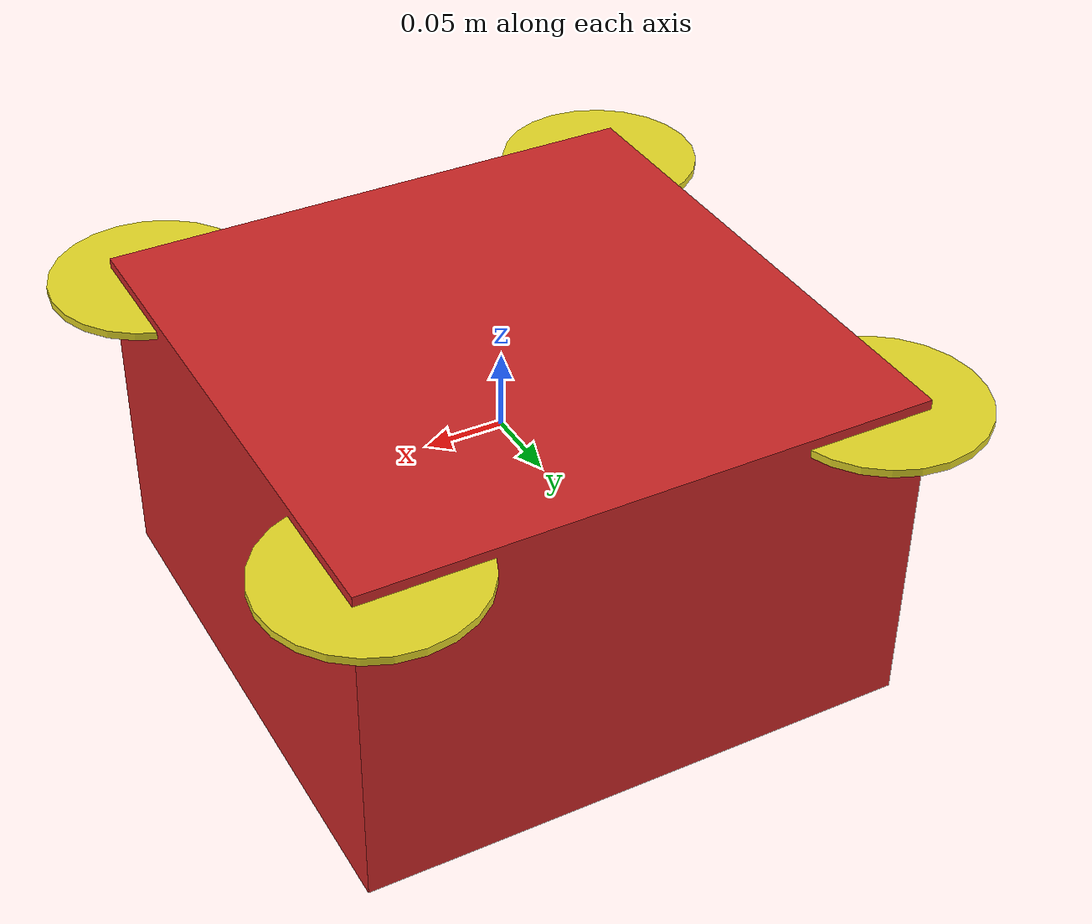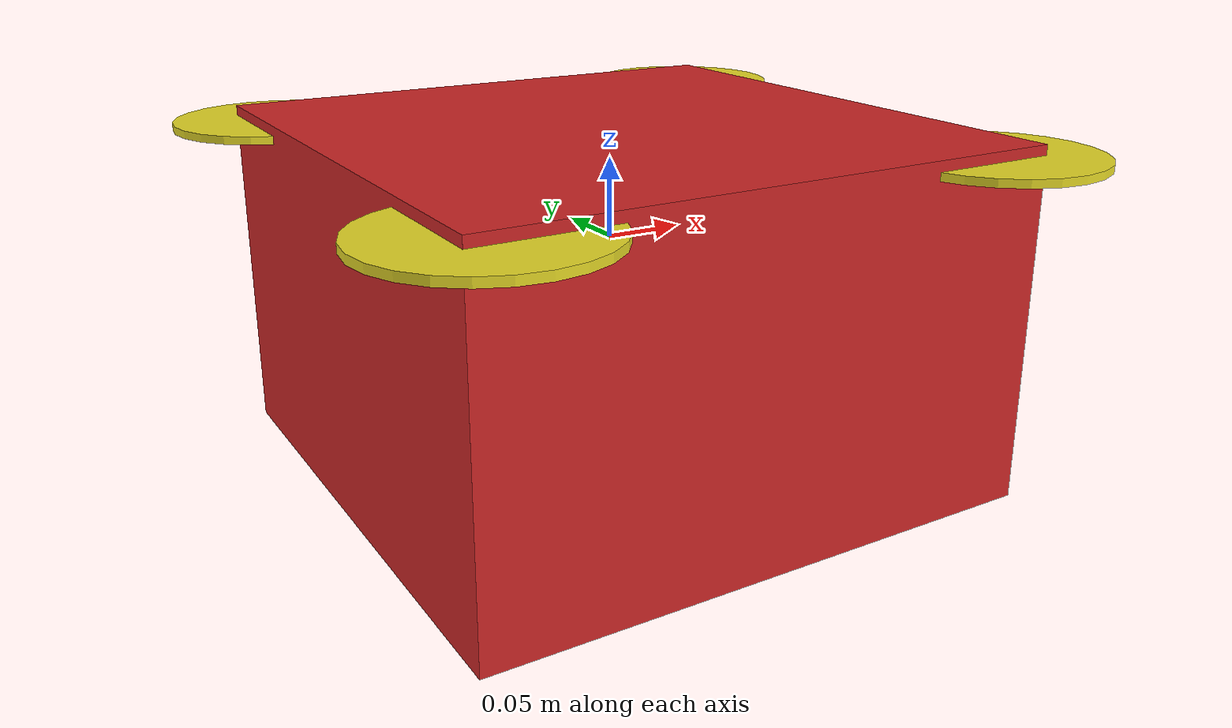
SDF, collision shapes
<sdf version='1.5'>
  <model name='quad_f450'>
    <link name='base_link'>
      <pose>0 0 0 0 0 0</pose> <!-- This pose is the visual offset of the vehicle + the reference frame -->
      <inertial>
        <pose>-1.6049e-05 0.00031379 0.012018 0 0 0</pose> <!-- This pose is the center of mass of the vehicle-->
        <mass>0.44728</mass>
        <inertia>
          <ixx>0.0007822</ixx>
          <ixy>1.1982e-11</ixy>
          <ixz>-1.295e-13</ixz>
          <iyy>0.00098484</iyy>
          <iyz>1.1391e-07</iyz>
          <izz>0.0015565</izz>
        </inertia>
      </inertial>
      <collision name='base_link_collision'>
        <pose>0 0 -0.0385 0 0 0</pose> <!-- The z Axis has an offset to create a centered box for collisions-->
        <geometry>
          <box>
            <size>0.3585 0.3585 0.22</size>
          </box>
        </geometry>
        <surface>
          <contact>
            <ode>
              <min_depth>0.001</min_depth>
              <max_vel>0</max_vel>
            </ode>
          </contact>
          <friction>
            <ode/>
          </friction>
        </surface>
      </collision>
      <visual name='base_link_visual'>
        <pose>0 0 0 0 0 0</pose>
        <geometry>
          <mesh>
            <scale>1 1 1</scale>
            <uri>model://quad_f450/meshes/base_link.stl</uri>
          </mesh>
        </geometry>
        <material>
          <script>
            <name>Gazebo/Red</name>
            <uri>file://media/materials/scripts/gazebo.material</uri>
          </script>
        </material>
      </visual>
      <gravity>1</gravity>
      <velocity_decay/>
   </link>

   <!-- IMU link-->
   <link name='/imu_link'>
      <pose>0 0 0 0 0 0</pose>
      <inertial>
        <pose>0 0 0 0 0 0</pose>
        <mass>0.015</mass>
        <inertia>
          <ixx>1e-05</ixx>
          <ixy>0</ixy>
          <ixz>0</ixz>
          <iyy>1e-05</iyy>
          <iyz>0</iyz>
          <izz>1e-05</izz>
        </inertia>
      </inertial>
    </link>
    <joint name='/imu_joint' type='revolute'>
      <child>/imu_link</child>
      <parent>base_link</parent>
      <axis>
        <xyz>1 0 0</xyz>
        <limit>
          <lower>0</lower>
          <upper>0</upper>
          <effort>0</effort>
          <velocity>0</velocity>
        </limit>
        <dynamics>
          <spring_reference>0</spring_reference>
          <spring_stiffness>0</spring_stiffness>
        </dynamics>
        <use_parent_model_frame>1</use_parent_model_frame>
      </axis>
    </joint>

    <!-- Rotor 1-->
   <link name='rotor_0'>
    <pose>0.15891 0.15872 0.062676 0 0 0.7854</pose>
      <inertial>
        <pose>0 0 0 0 0 0</pose>
        <mass>0.00082772</mass>
        <inertia>
          <ixx>3.593e-07</ixx>
          <ixy>-3.6419e-07</ixy>
          <ixz>2.9799e-13</ixz>
          <iyy>3.8272e-07</iyy>
          <iyz>2.4963e-13</iyz>
          <izz>7.3988e-07</izz>
        </inertia>
      </inertial>
      <collision name='rotor_0_collision'>
        <pose>0 0 0 0 0 0</pose>
        <geometry>
          <cylinder>
            <length>0.005</length>
            <radius>0.065</radius>
          </cylinder>
        </geometry>
        <surface>
          <contact>
            <ode/>
          </contact>
          <friction>
            <ode/>
          </friction>
        </surface>
      </collision>
      <visual name='rotor_0_visual'>
        <pose>0 0 0 0 0 0</pose>
        <geometry>
          <mesh>
            <scale>1 1 1</scale>
            <uri>model://quad_f450/meshes/propeller_1_link.stl</uri>
          </mesh>
        </geometry>
        <material>
          <script>
            <name>Gazebo/Yellow</name>
            <uri>file://media/materials/scripts/gazebo.material</uri>
          </script>
        </material>
      </visual>
      <gravity>1</gravity>
      <velocity_decay/>
      <self_collide>0</self_collide>
    </link>
    <joint name='rotor_0_joint' type='revolute'>
      <child>rotor_0</child>
      <parent>base_link</parent>
      <pose>0 0 0 0 0 0</pose>
      <axis>
        <xyz>0 0 -1</xyz>
        <limit>
          <lower>-1e+16</lower>
          <upper>1e+16</upper>
          <effort>10</effort>
          <velocity>-1</velocity>
        </limit>
        <dynamics>
          <damping>0.005</damping>
        </dynamics>
        <use_parent_model_frame>1</use_parent_model_frame>
      </axis>
      <physics>
        <ode>
          <implicit_spring_damper>1</implicit_spring_damper>
        </ode>
      </physics>
    </joint>

    <!-- Rotor 2-->
    <link name='rotor_1'>
    <pose>0.1589 -0.15909 0.062676 0 0 -0.7854</pose>
      <inertial>
        <pose>0 0 0 0 0 0</pose>
        <mass>0.00082772</mass>
        <inertia>
          <ixx>3.8272e-07</ixx>
          <ixy>3.6419e-07</ixy>
          <ixz>-2.3781e-13</ixz>
          <iyy>3.593e-07</iyy>
          <iyz>2.6885e-13</iyz>
          <izz>7.3988e-07</izz>
        </inertia>
      </inertial>
      <collision name='rotor_1_collision'>
        <pose>0 0 0 0 0 0</pose>
        <geometry>
          <cylinder>
            <length>0.005</length>
            <radius>0.065</radius>
          </cylinder>
        </geometry>
        <surface>
          <contact>
            <ode/>
          </contact>
          <friction>
            <ode/>
          </friction>
        </surface>
      </collision>
      <visual name='rotor_1_visual'>
        <pose>0 0 0 0 0 0</pose>
        <geometry>
          <mesh>
            <scale>1 1 1</scale>
            <uri>model://quad_f450/meshes/propeller_2_link.stl</uri>
          </mesh>
        </geometry>
        <material>
          <script>
            <name>Gazebo/Yellow</name>
            <uri>file://media/materials/scripts/gazebo.material</uri>
          </script>
        </material>
      </visual>
      <gravity>1</gravity>
      <velocity_decay/>
      <self_collide>0</self_collide>
    </link>
    <joint name='rotor_1_joint' type='revolute'>
      <child>rotor_1</child>
      <parent>base_link</parent>
      <pose>0 0 0 0 0 0</pose>
      <axis>
        <xyz>0 0 1</xyz>
        <limit>
          <lower>-1e+16</lower>
          <upper>1e+16</upper>
          <effort>10</effort>
          <velocity>-1</velocity>
        </limit>
        <dynamics>
          <damping>0.005</damping>
        </dynamics>
        <use_parent_model_frame>1</use_parent_model_frame>
      </axis>
      <physics>
        <ode>
          <implicit_spring_damper>1</implicit_spring_damper>
        </ode>
      </physics>
    </joint>

    <!-- Rotor 3-->
    <link name='rotor_2'>
    <pose>-0.15891 -0.15908 0.062676 0 0 0.7854</pose>
      <inertial>
        <pose>0 0 0 0 0 0</pose>
        <mass>0.00082772</mass>
        <inertia>
          <ixx>3.593e-07</ixx>
          <ixy>-3.6419e-07</ixy>
          <ixz>2.9673e-13</ixz>
          <iyy>3.8272e-07</iyy>
          <iyz>2.709e-13</iyz>
          <izz>7.3988e-07</izz>
        </inertia>
      </inertial>
      <collision name='rotor_2_collision'>
        <pose>0 0 0 0 0 0</pose>
        <geometry>
          <cylinder>
            <length>0.005</length>
            <radius>0.065</radius>
          </cylinder>
        </geometry>
        <surface>
          <contact>
            <ode/>
          </contact>
          <friction>
            <ode/>
          </friction>
        </surface>
      </collision>
      <visual name='rotor_2_visual'>
        <pose>0 0 0 0 0 0</pose>
        <geometry>
          <mesh>
            <scale>1 1 1</scale>
            <uri>model://quad_f450/meshes/propeller_1_link.stl</uri>
          </mesh>
        </geometry>
        <material>
          <script>
            <name>Gazebo/Yellow</name>
            <uri>file://media/materials/scripts/gazebo.material</uri>
          </script>
        </material>
      </visual>
      <gravity>1</gravity>
      <velocity_decay/>
      <self_collide>0</self_collide>
    </link>
    <joint name='rotor_2_joint' type='revolute'>
      <child>rotor_2</child>
      <parent>base_link</parent>
      <pose>0 0 0 0 0 0</pose>
      <axis>
        <xyz>0 0 -1</xyz>
        <limit>
          <lower>-1e+16</lower>
          <upper>1e+16</upper>
          <effort>10</effort>
          <velocity>-1</velocity>
        </limit>
        <dynamics>
          <damping>0.005</damping>
        </dynamics>
        <use_parent_model_frame>1</use_parent_model_frame>
      </axis>
      <physics>
        <ode>
          <implicit_spring_damper>1</implicit_spring_damper>
        </ode>
      </physics>
    </joint>

    <!-- Rotor 4-->
    <link name='rotor_3'>
    <pose>-0.1589 0.15873 0.062676 0 0 -0.7854</pose>
      <inertial>
        <pose>0 0 0 0 0 0</pose>
        <mass>0.00082772</mass>
        <inertia>
          <ixx>3.8272e-07</ixx>
          <ixy>3.6419e-07</ixy>
          <ixz>-2.49e-13</ixz>
          <iyy>3.593e-07</iyy>
          <iyz>2.7924e-13</iyz>
          <izz>7.3988e-07</izz>
        </inertia>
      </inertial>
      <collision name='rotor_3_collision'>
        <pose>0 0 0 0 0 0</pose>
        <geometry>
          <cylinder>
            <length>0.005</length>
            <radius>0.065</radius>
          </cylinder>
        </geometry>
        <surface>
          <contact>
            <ode/>
          </contact>
          <friction>
            <ode/>
          </friction>
        </surface>
      </collision>
      <visual name='rotor_3_visual'>
        <pose>0 0 0 0 0 0</pose>
        <geometry>
          <mesh>
            <scale>1 1 1</scale>
            <uri>model://quad_f450/meshes/propeller_2_link.stl</uri>
          </mesh>
        </geometry>
        <material>
          <script>
            <name>Gazebo/Yellow</name>
            <uri>file://media/materials/scripts/gazebo.material</uri>
          </script>
        </material>
      </visual>
      <gravity>1</gravity>
      <velocity_decay/>
      <self_collide>0</self_collide>
    </link>
    <joint name='rotor_3_joint' type='revolute'>
      <child>rotor_3</child>
      <parent>base_link</parent>
      <pose>0 0 0 0 0 0</pose>
      <axis>
        <xyz>0 0 1</xyz>
        <limit>
          <lower>-1e+16</lower>
          <upper>1e+16</upper>
          <effort>10</effort>
          <velocity>-1</velocity>
        </limit>
        <dynamics>
          <damping>0.005</damping>
        </dynamics>
        <use_parent_model_frame>1</use_parent_model_frame>
      </axis>
      <physics>
        <ode>
          <implicit_spring_damper>1</implicit_spring_damper>
        </ode>
      </physics>
    </joint>

    <!-- Rosbag Plugin-->
    <plugin name='rosbag' filename='libgazebo_multirotor_base_plugin.so'>
      <robotNamespace/>
      <linkName>base_link</linkName>
      <rotorVelocitySlowdownSim>10</rotorVelocitySlowdownSim>
    </plugin>

    <!-- Motor 2 Plugin-->
    <plugin name='front_right_motor_model' filename='libgazebo_motor_model.so'>
      <robotNamespace/>
      <jointName>rotor_1_joint</jointName>
      <linkName>rotor_1</linkName>
      <turningDirection>ccw</turningDirection>
      <timeConstantUp>0.0125</timeConstantUp>
      <timeConstantDown>0.025</timeConstantDown>
      <maxRotVelocity>1100</maxRotVelocity>
      <motorConstant>8.54858e-06</motorConstant>
      <momentConstant>0.06</momentConstant>
      <commandSubTopic>/gazebo/command/motor_speed</commandSubTopic>
      <motorNumber>0</motorNumber>
      <rotorDragCoefficient>0.000806428</rotorDragCoefficient>
      <rollingMomentCoefficient>1e-06</rollingMomentCoefficient>
      <motorSpeedPubTopic>/motor_speed/0</motorSpeedPubTopic>
      <rotorVelocitySlowdownSim>10</rotorVelocitySlowdownSim>
    </plugin>

    <!-- Motor 4 Plugin-->
    <plugin name='back_left_motor_model' filename='libgazebo_motor_model.so'>
      <robotNamespace/>
      <jointName>rotor_3_joint</jointName>
      <linkName>rotor_3</linkName>
      <turningDirection>ccw</turningDirection>
      <timeConstantUp>0.0125</timeConstantUp>
      <timeConstantDown>0.025</timeConstantDown>
      <maxRotVelocity>1100</maxRotVelocity>
      <motorConstant>8.54858e-06</motorConstant>
      <momentConstant>0.06</momentConstant>
      <commandSubTopic>/gazebo/command/motor_speed</commandSubTopic>
      <motorNumber>1</motorNumber>
      <rotorDragCoefficient>0.000806428</rotorDragCoefficient>
      <rollingMomentCoefficient>1e-06</rollingMomentCoefficient>
      <motorSpeedPubTopic>/motor_speed/1</motorSpeedPubTopic>
      <rotorVelocitySlowdownSim>10</rotorVelocitySlowdownSim>
    </plugin>

    <!-- Motor 1 Plugin-->
    <plugin name='front_left_motor_model' filename='libgazebo_motor_model.so'>
      <robotNamespace/>
      <jointName>rotor_0_joint</jointName>
      <linkName>rotor_0</linkName>
      <turningDirection>cw</turningDirection>
      <timeConstantUp>0.0125</timeConstantUp>
      <timeConstantDown>0.025</timeConstantDown>
      <maxRotVelocity>1100</maxRotVelocity>
      <motorConstant>8.54858e-06</motorConstant>
      <momentConstant>0.06</momentConstant>
      <commandSubTopic>/gazebo/command/motor_speed</commandSubTopic>
      <motorNumber>2</motorNumber>
      <rotorDragCoefficient>0.000806428</rotorDragCoefficient>
      <rollingMomentCoefficient>1e-06</rollingMomentCoefficient>
      <motorSpeedPubTopic>/motor_speed/2</motorSpeedPubTopic>
      <rotorVelocitySlowdownSim>10</rotorVelocitySlowdownSim>
    </plugin>

    <!-- Motor 3 Plugin-->
    <plugin name='back_right_motor_model' filename='libgazebo_motor_model.so'>
      <robotNamespace/>
      <jointName>rotor_2_joint</jointName>
      <linkName>rotor_2</linkName>
      <turningDirection>cw</turningDirection>
      <timeConstantUp>0.0125</timeConstantUp>
      <timeConstantDown>0.025</timeConstantDown>
      <maxRotVelocity>1100</maxRotVelocity>
      <motorConstant>8.54858e-06</motorConstant>
      <momentConstant>0.06</momentConstant>
      <commandSubTopic>/gazebo/command/motor_speed</commandSubTopic>
      <motorNumber>3</motorNumber>
      <rotorDragCoefficient>0.000806428</rotorDragCoefficient>
      <rollingMomentCoefficient>1e-06</rollingMomentCoefficient>
      <motorSpeedPubTopic>/motor_speed/3</motorSpeedPubTopic>
      <rotorVelocitySlowdownSim>10</rotorVelocitySlowdownSim>
    </plugin>

    <!-- GPS Plugin-->
    <plugin name='gps_plugin' filename='libgazebo_gps_plugin.so'>
      <robotNamespace/>
      <gpsNoise>true</gpsNoise>
    </plugin>

    <!-- Magnetometer Plugin-->
    <plugin name='magnetometer_plugin' filename='libgazebo_magnetometer_plugin.so'>
      <robotNamespace/>
      <pubRate>20</pubRate>
      <noiseDensity>0.0004</noiseDensity>
      <randomWalk>6.4e-06</randomWalk>
      <biasCorrelationTime>600</biasCorrelationTime>
      <magTopic>/mag</magTopic>
    </plugin>

    <!-- Barometer Plugin-->
    <plugin name='barometer_plugin' filename='libgazebo_barometer_plugin.so'>
      <robotNamespace/>
      <pubRate>10</pubRate>
      <baroTopic>/baro</baroTopic>
    </plugin>

    <!-- Mavlink Plugin-->
    <plugin name='mavlink_interface' filename='libgazebo_mavlink_interface.so'>
      <robotNamespace/>
      <imuSubTopic>/imu</imuSubTopic>
      <gpsSubTopic>/gps</gpsSubTopic>
      <magSubTopic>/mag</magSubTopic>
      <baroSubTopic>/baro</baroSubTopic>
      <mavlink_addr>INADDR_ANY</mavlink_addr>
      <mavlink_udp_port>14560</mavlink_udp_port>
      <mavlink_tcp_port>4560</mavlink_tcp_port>
      <serialEnabled>0</serialEnabled>
      <serialDevice>/dev/ttyACM0</serialDevice>
      <baudRate>921600</baudRate>
      <qgc_addr>INADDR_ANY</qgc_addr>
      <qgc_udp_port>14550</qgc_udp_port>
      <sdk_addr>INADDR_ANY</sdk_addr>
      <sdk_udp_port>14540</sdk_udp_port>
      <hil_mode>0</hil_mode>
      <hil_state_level>0</hil_state_level>
      <enable_lockstep>1</enable_lockstep>
      <use_tcp>1</use_tcp>
      <vehicle_is_tailsitter>0</vehicle_is_tailsitter>
      <send_vision_estimation>1</send_vision_estimation>
      <send_odometry>0</send_odometry>
      <motorSpeedCommandPubTopic>/gazebo/command/motor_speed</motorSpeedCommandPubTopic>
      <control_channels>
        <channel name='rotor1'>
          <input_index>0</input_index>
          <input_offset>0</input_offset>
          <input_scaling>1200</input_scaling>
          <zero_position_disarmed>0</zero_position_disarmed>
          <zero_position_armed>100</zero_position_armed>
          <joint_control_type>velocity</joint_control_type>
          <joint_name>rotor_1_joint</joint_name>
        </channel>
        <channel name='rotor2'>
          <input_index>1</input_index>
          <input_offset>0</input_offset>
          <input_scaling>1200</input_scaling>
          <zero_position_disarmed>0</zero_position_disarmed>
          <zero_position_armed>100</zero_position_armed>
          <joint_control_type>velocity</joint_control_type>
          <joint_name>rotor_3_joint</joint_name>
        </channel>
        <channel name='rotor3'>
          <input_index>2</input_index>
          <input_offset>0</input_offset>
          <input_scaling>1200</input_scaling>
          <zero_position_disarmed>0</zero_position_disarmed>
          <zero_position_armed>100</zero_position_armed>
          <joint_control_type>velocity</joint_control_type>
          <joint_name>rotor_0_joint</joint_name>
        </channel>
        <channel name='rotor4'>
          <input_index>3</input_index>
          <input_offset>0</input_offset>
          <input_scaling>1200</input_scaling>
          <zero_position_disarmed>0</zero_position_disarmed>
          <zero_position_armed>100</zero_position_armed>
          <joint_control_type>velocity</joint_control_type>
          <joint_name>rotor_2_joint</joint_name>
        </channel>
      </control_channels>
    </plugin>
    <static>0</static>

    <!-- IMU plugin-->
    <plugin name='rotors_gazebo_imu_plugin' filename='libgazebo_imu_plugin.so'>
      <robotNamespace/>
      <linkName>/imu_link</linkName>
      <imuTopic>/imu</imuTopic>
      <gyroscopeNoiseDensity>0.0003394</gyroscopeNoiseDensity>
      <gyroscopeRandomWalk>3.8785e-05</gyroscopeRandomWalk>
      <gyroscopeBiasCorrelationTime>1000.0</gyroscopeBiasCorrelationTime>
      <gyroscopeTurnOnBiasSigma>0.0087</gyroscopeTurnOnBiasSigma>
      <accelerometerNoiseDensity>0.004</accelerometerNoiseDensity>
      <accelerometerRandomWalk>0.006</accelerometerRandomWalk>
      <accelerometerBiasCorrelationTime>300.0</accelerometerBiasCorrelationTime>
      <accelerometerTurnOnBiasSigma>0.196</accelerometerTurnOnBiasSigma>
    </plugin>

  </model>
</sdf>
